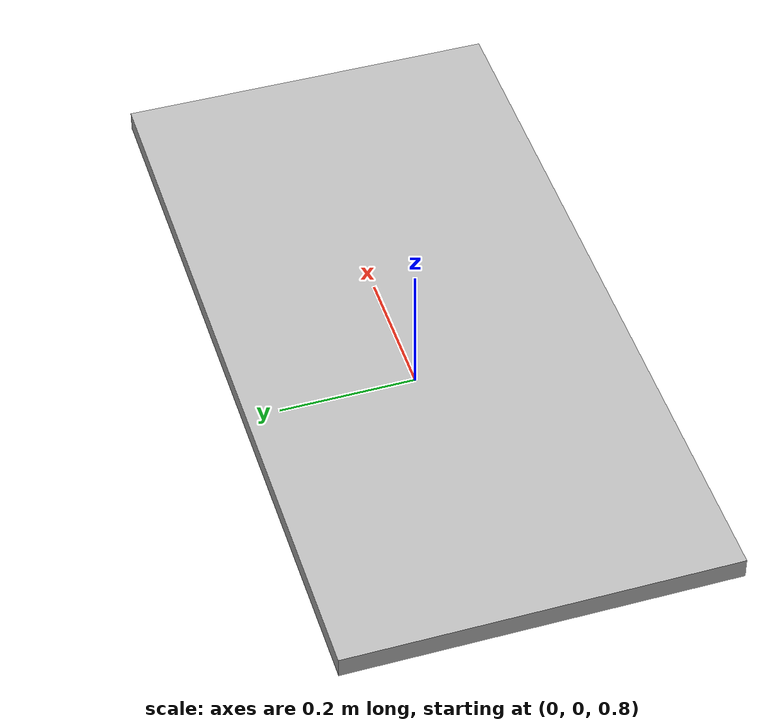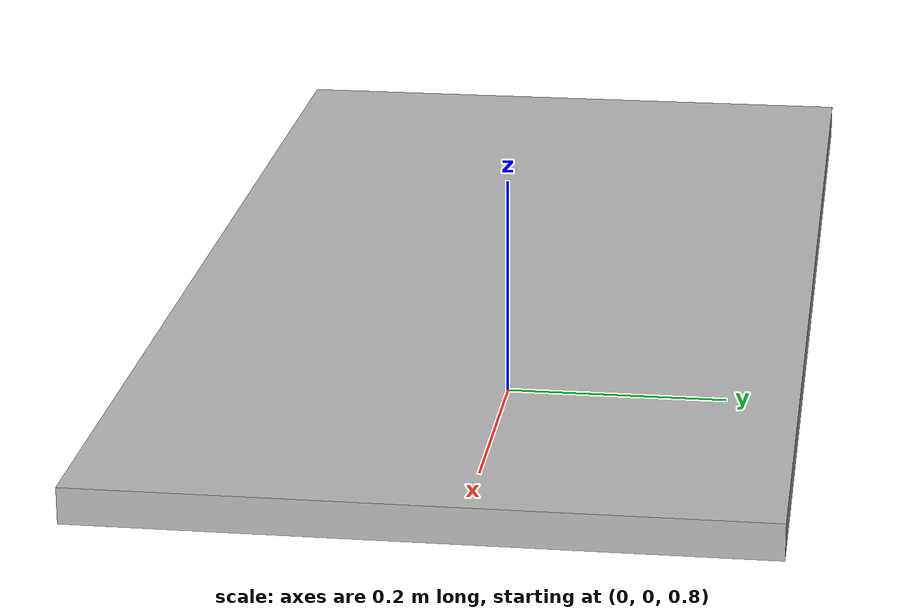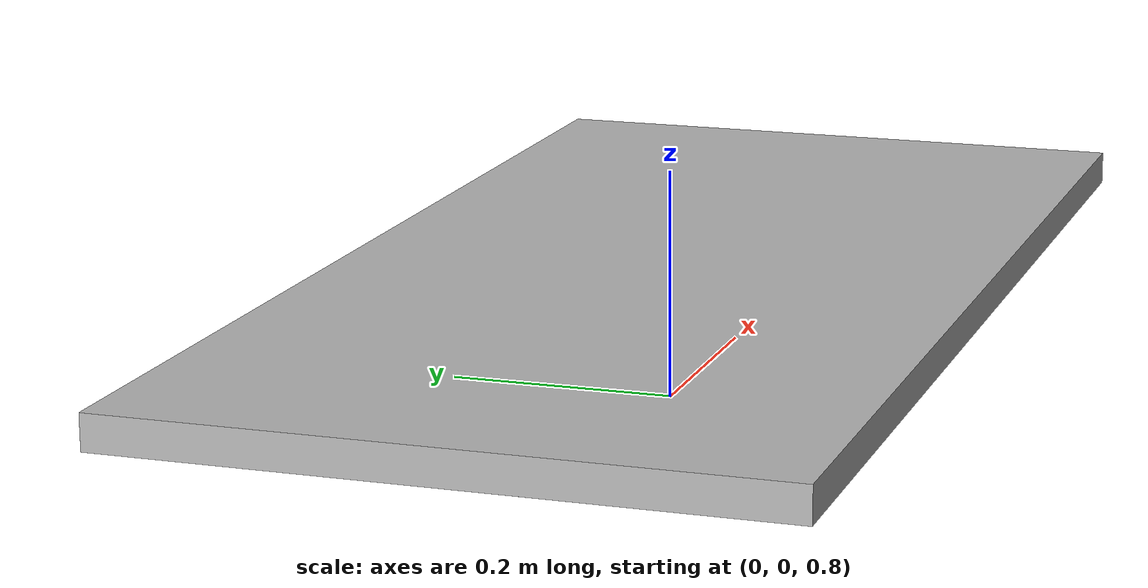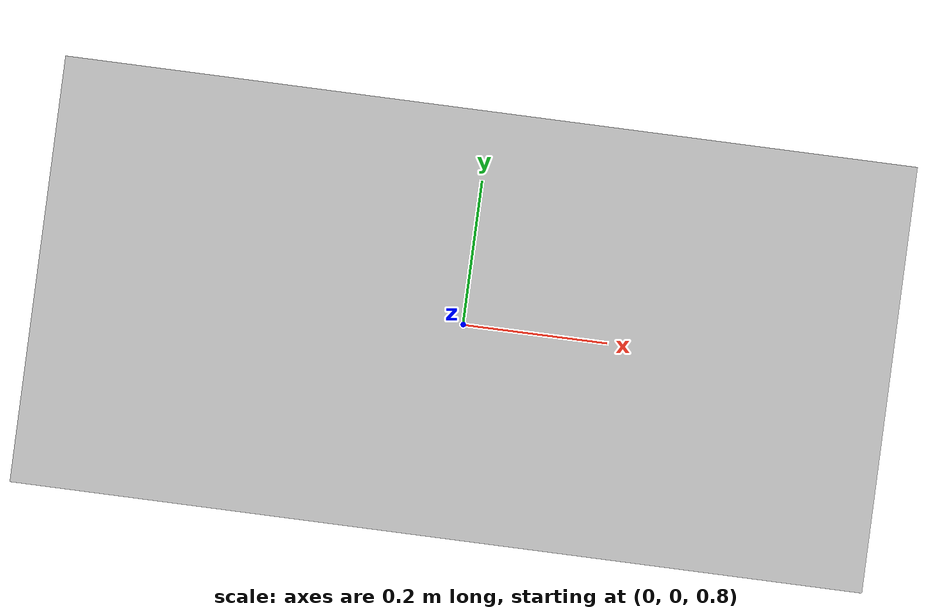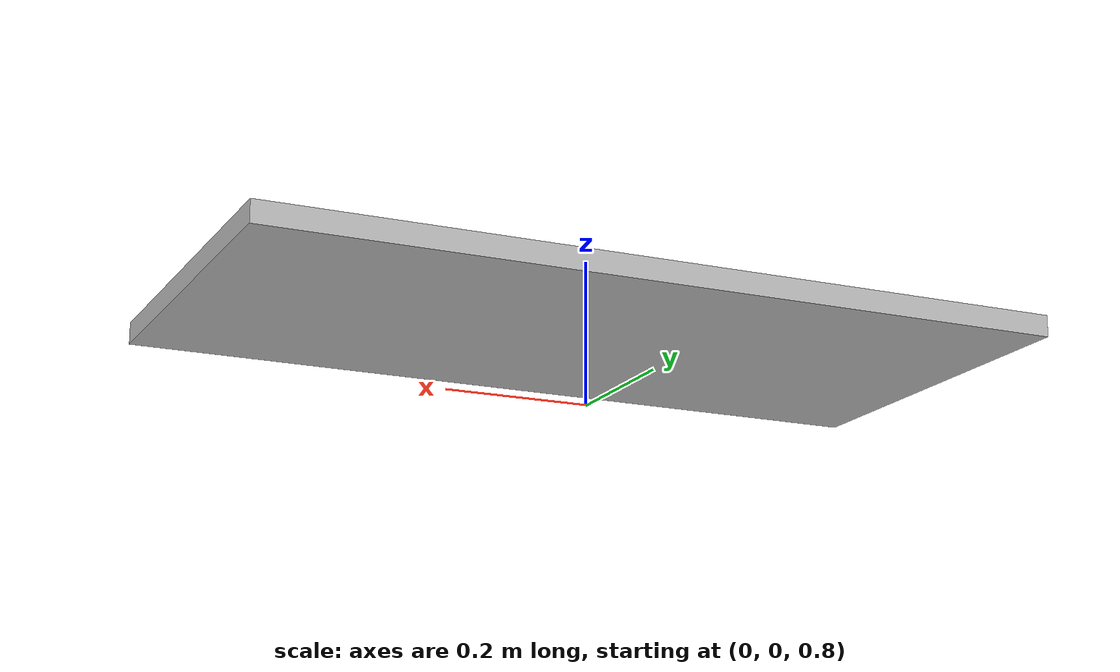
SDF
<?xml version='1.0'?>
<sdf version='1.4'>
  <model name="top">
  <static>true</static>

	<link name='link'>
            <collision name="surface">
        <pose>0 0 0.905 0 0 0</pose>
        <geometry>
          <box>
            <size>1.1 0.55 0.03</size>
          </box>
        </geometry>
        <surface>
          <friction>
            <ode>
              <mu>0.6</mu>
              <mu2>0.6</mu2>
            </ode>
          </friction>
        </surface>
      </collision>
      <visual name="visual1">
        <pose>0 0 0.905 0 0 0</pose>
        <geometry>
          <box>
            <size>1.1 0.55 0.03</size>
          </box>
        </geometry>

      </visual>

   </link>
  </model>
</sdf>
